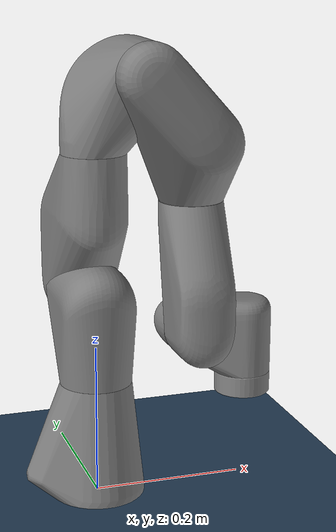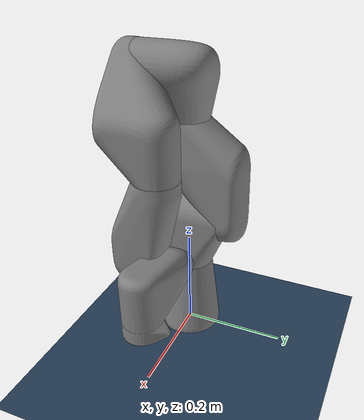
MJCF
<mujoco model="xarm7">
  <compiler angle="radian" meshdir="../meshes"/>

  <asset>
    <mesh name="link_base" file="xarm7/collision/link_base.stl"/>
    <mesh name="link1" file="xarm7/collision/link1.stl"/>
    <mesh name="link2" file="xarm7/collision/link2.stl"/>
    <mesh name="link3" file="xarm7/collision/link3.stl"/>
    <mesh name="link4" file="xarm7/collision/link4.stl"/>
    <mesh name="link5" file="xarm7/collision/link5.stl"/>
    <mesh name="link6" file="xarm7/collision/link6.stl"/>
    <mesh name="link7" file="xarm7/collision/link7.stl"/>
    <texture type="2d" name="groundplane" builtin="checker" mark="edge" rgb1="0.2 0.3 0.4" rgb2="0.1 0.2 0.3"
      markrgb="0.8 0.8 0.8" width="300" height="300"/>
    <material name="groundplane" texture="groundplane" texuniform="true" texrepeat="5 5"/>
  </asset>

  <worldbody>
    <light pos="0 0 1.5" dir="0 0 -1" directional="true"/>
    <geom conaffinity="0" contype="1" material="groundplane" name="floor" pos="0 0 -0.01" size="0 0 0.01" type="plane"/>

    <body name="link_base">
      <geom name="link_base_visual" mesh="link_base" class="visual"/>
      <geom name="link_base_collision" mesh="link_base" class="collision"/>
    </body>
    <body name="link1" pos="0 0 0.267">
      <inertial pos="-0.0002 0.02905 -0.01233" quat="0.978953 -0.202769 -0.00441617 -0.0227264" mass="2.382" diaginertia="0.00569127 0.00533384 0.00293865"/>
      <joint name="joint1" pos="0 0 0" axis="0 0 1" range="-6.28319 6.28319" actuatorfrcrange="-50 50" damping="10" frictionloss="1"/>
      <geom name="link1_visual" mesh="link1" class="visual"/>
      <geom name="link1_collision" mesh="link1" class="collision"/>
      <body name="link2" quat="0.707105 -0.707108 0 0">
        <inertial pos="0.00022 -0.12856 0.01735" quat="0.50198 0.86483 -0.00778841 0.00483285" mass="1.869" diaginertia="0.00959898 0.00937717 0.00201315"/>
        <joint name="joint2" pos="0 0 0" axis="0 0 1" range="-2.059 2.0944" actuatorfrcrange="-50 50" damping="10" frictionloss="1"/>
        <geom name="link2_visual" mesh="link2" class="visual"/>
        <geom name="link2_collision" mesh="link2" class="collision"/>
        <body name="link3" pos="0 -0.293 0" quat="0.707105 0.707108 0 0">
          <inertial pos="0.0466 -0.02463 -0.00768" quat="0.913819 0.289775 0.281481 -0.0416455" mass="1.6383" diaginertia="0.00351721 0.00294089 0.00195868"/>
          <joint name="joint3" pos="0 0 0" axis="0 0 1" range="-6.28319 6.28319" actuatorfrcrange="-30 30" damping="5" frictionloss="1"/>
          <geom name="link3_visual" mesh="link3" class="visual"/>
          <geom name="link3_collision" mesh="link3" class="collision"/>
          <body name="link4" pos="0.0525 0 0" quat="0.707105 0.707108 0 0">
            <inertial pos="0.07047 -0.11575 0.012" quat="0.422108 0.852026 -0.126025 0.282832" mass="1.7269" diaginertia="0.00657137 0.00647948 0.00186763"/>
            <joint name="joint4" pos="0 0 0" axis="0 0 1" range="-0.19198 3.927" actuatorfrcrange="-30 30" damping="5" frictionloss="1"/>
            <geom name="link4_visual" mesh="link4" class="visual"/>
            <geom name="link4_collision" mesh="link4" class="collision"/>
            <body name="link5" pos="0.0775 -0.3425 0" quat="0.707105 0.707108 0 0">
              <inertial pos="-0.00032 0.01604 -0.026" quat="0.999311 -0.0304457 0.000577067 0.0212082" mass="1.3203" diaginertia="0.00534729 0.00499076 0.0013489"/>
              <joint name="joint5" pos="0 0 0" axis="0 0 1" range="-6.28319 6.28319" actuatorfrcrange="-30 30" damping="5" frictionloss="1"/>
              <geom name="link5_visual" mesh="link5" class="visual"/>
              <geom name="link5_collision" mesh="link5" class="collision"/>
              <body name="link6" quat="0.707105 0.707108 0 0">
                <inertial pos="0.06469 0.03278 0.02141" quat="-0.217672 0.772419 0.16258 0.574069" mass="1.325" diaginertia="0.00245421 0.00221646 0.00107273"/>
                <joint name="joint6" pos="0 0 0" axis="0 0 1" range="-1.69297 3.14159" actuatorfrcrange="-20 20" damping="2" frictionloss="1"/>
                <geom name="link6_visual" mesh="link6" class="visual"/>
                <geom name="link6_collision" mesh="link6" class="collision"/>
                <body name="link7" pos="0.076 0.097 0" quat="0.707105 -0.707108 0 0">
                  <inertial pos="0 -0.00677 -0.01098" quat="0.487612 0.512088 -0.512088 0.487612" mass="0.17" diaginertia="0.000132176 9.3e-05 5.85236e-05"/>
                  <joint name="joint7" pos="0 0 0" axis="0 0 1" range="-6.28319 6.28319" actuatorfrcrange="-20 20" damping="2" frictionloss="1"/>
                  <geom name="link7_visual" mesh="link7" class="visual"/>
                  <geom name="link7_collision" mesh="link7" class="collision"/>
                </body>
              </body>
            </body>
          </body>
        </body>
      </body>
    </body>
  </worldbody>

  <option integrator="implicitfast"/>

  <statistic center="0.3 0 0.4" extent="1.5"/>
  <visual>
    <headlight diffuse="0.6 0.6 0.6" ambient="0.1 0.1 0.1" specular="0 0 0"/>
    <rgba haze="0.15 0.25 0.35 1"/>
    <global azimuth="120" elevation="-20"/>
  </visual>

  <default>
    <default class="visual">
      <geom group="2" type="mesh" contype="0" conaffinity="0"/>
    </default>
    <default class="collision">
      <geom group="3" type="mesh"/>
    </default>
  </default>

  <actuator>
    <position name="joint1" joint="joint1" kp="15000" dampratio="1.0" ctrlrange="-6.2831853 6.2831853"/>
    <position name="joint2" joint="joint2" kp="15000" dampratio="1.0" ctrlrange="-2.059 2.0944"/>
    <position name="joint3" joint="joint3" kp="8000" dampratio="1.0" ctrlrange="-6.2831853 6.2831853"/>
    <position name="joint4" joint="joint4" kp="5000" dampratio="1.0" ctrlrange="-0.19198 3.927"/>
    <position name="joint5" joint="joint5" kp="3000" dampratio="1.0" ctrlrange="-6.2831853 6.2831853"/>
    <position name="joint6" joint="joint6" kp="2000" dampratio="1.0" ctrlrange="-1.69297 3.1415926"/>
    <position name="joint7" joint="joint7" kp="1000" dampratio="1.0" ctrlrange="-6.2831853 6.2831853"/>
  </actuator>
</mujoco>
